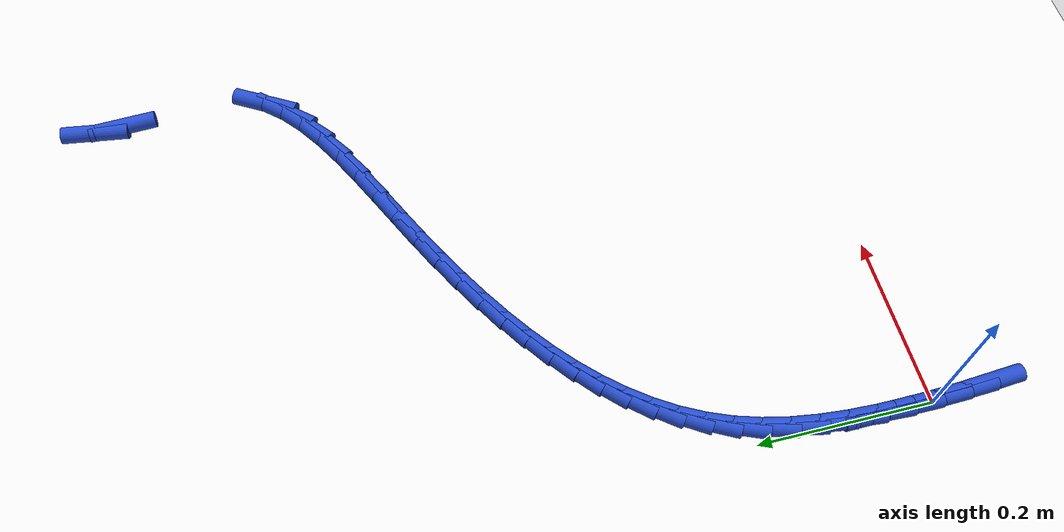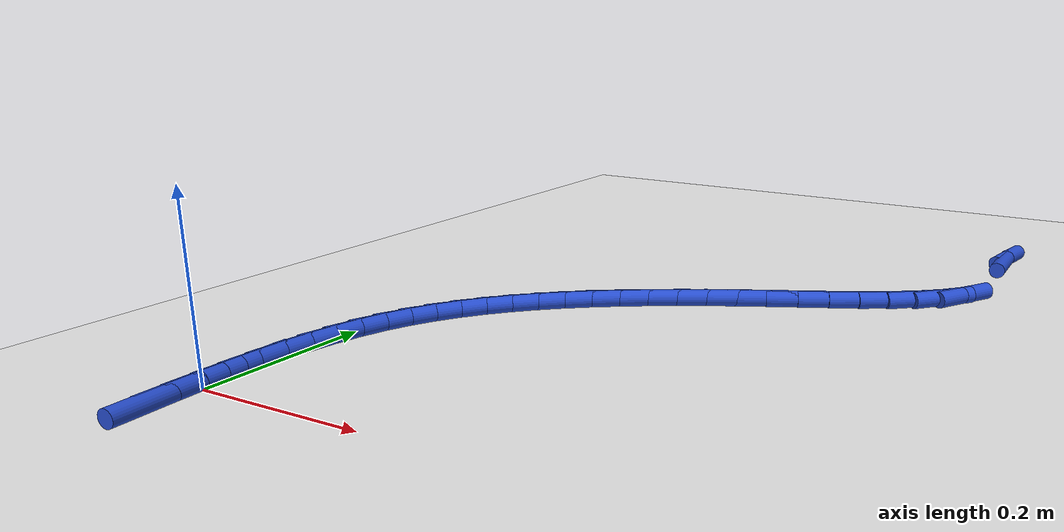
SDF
<sdf version="1.6">
 <world name="default">
  <model name="ground_plane">
   <static>1</static>
   <link name="link">
    <collision name="collision">
     <geometry><plane><normal>0 0 1</normal><size>100 100</size></plane></geometry>
     <surface><friction><ode><mu>100</mu><mu2>50</mu2></ode></friction></surface>
    </collision>
    <visual name="visual">
     <cast_shadows>0</cast_shadows>
     <geometry><plane><normal>0 0 1</normal><size>100 100</size></plane></geometry>
     <material>
      <script><uri>file://media/materials/scripts/gazebo.material</uri><name>Gazebo/WhiteGlow</name></script>
     </material>
    </visual>
   </link>
  </model>
  <model name="line">
   <link name="link_0">
    <pose>1.1058862159352145e-17 -4.163336342344337e-17 0.01 0 1.57 -1.5520934585583777</pose>
    <collision name="collision">
     <geometry><cylinder><radius>0.01</radius><length>0.08</length></cylinder></geometry>
    </collision>
    <visual name="visual">
     <material>
      <script><name>Gazebo/Blue</name><uri>file://media/materials/scripts/gazebo.material</uri></script>
     </material>
     <geometry><cylinder><radius>0.01</radius><length>0.08</length></cylinder></geometry>
    </visual>
   </link>
   <link name="link_1">
    <pose>-0.0006060910726536685 0.03240253813865341 0.01 0 1.57 1.5602132643527702</pose>
    <collision name="collision">
     <geometry><cylinder><radius>0.01</radius><length>0.08</length></cylinder></geometry>
    </collision>
    <visual name="visual">
     <material>
      <script><name>Gazebo/Blue</name><uri>file://media/materials/scripts/gazebo.material</uri></script>
     </material>
     <geometry><cylinder><radius>0.01</radius><length>0.08</length></cylinder></geometry>
    </visual>
   </link>
   <link name="link_2">
    <pose>-0.00026167454089582134 0.06494545047513745 0.01 0 1.57 1.5225124292682661</pose>
    <collision name="collision">
     <geometry><cylinder><radius>0.01</radius><length>0.08</length></cylinder></geometry>
    </collision>
    <visual name="visual">
     <material>
      <script><name>Gazebo/Blue</name><uri>file://media/materials/scripts/gazebo.material</uri></script>
     </material>
     <geometry><cylinder><radius>0.01</radius><length>0.08</length></cylinder></geometry>
    </visual>
   </link>
   <link name="link_3">
    <pose>0.001304259534824519 0.09735205104350853 0.01 0 1.57 1.4754899106537582</pose>
    <collision name="collision">
     <geometry><cylinder><radius>0.01</radius><length>0.08</length></cylinder></geometry>
    </collision>
    <visual name="visual">
     <material>
      <script><name>Gazebo/Blue</name><uri>file://media/materials/scripts/gazebo.material</uri></script>
     </material>
     <geometry><cylinder><radius>0.01</radius><length>0.08</length></cylinder></geometry>
    </visual>
   </link>
   <link name="link_4">
    <pose>0.004362721094058318 0.12934565387782318 0.01 0 1.57 1.4179594097095918</pose>
    <collision name="collision">
     <geometry><cylinder><radius>0.01</radius><length>0.08</length></cylinder></geometry>
    </collision>
    <visual name="visual">
     <material>
      <script><name>Gazebo/Blue</name><uri>file://media/materials/scripts/gazebo.material</uri></script>
     </material>
     <geometry><cylinder><radius>0.01</radius><length>0.08</length></cylinder></geometry>
    </visual>
   </link>
   <link name="link_5">
    <pose>0.009184720076356545 0.160649573012138 0.01 0 1.57 1.3485221151968647</pose>
    <collision name="collision">
     <geometry><cylinder><radius>0.01</radius><length>0.08</length></cylinder></geometry>
    </collision>
    <visual name="visual">
     <material>
      <script><name>Gazebo/Blue</name><uri>file://media/materials/scripts/gazebo.material</uri></script>
     </material>
     <geometry><cylinder><radius>0.01</radius><length>0.08</length></cylinder></geometry>
    </visual>
   </link>
   <link name="link_6">
    <pose>0.016041266421270163 0.1909871224805094 0.01 0 1.57 1.2657338690753326</pose>
    <collision name="collision">
     <geometry><cylinder><radius>0.01</radius><length>0.08</length></cylinder></geometry>
    </collision>
    <visual name="visual">
     <material>
      <script><name>Gazebo/Blue</name><uri>file://media/materials/scripts/gazebo.material</uri></script>
     </material>
     <geometry><cylinder><radius>0.01</radius><length>0.08</length></cylinder></geometry>
    </visual>
   </link>
   <link name="link_7">
    <pose>0.025202995325985585 0.220081962973515 0.01 0 1.57 1.1728728424087764</pose>
    <collision name="collision">
     <geometry><cylinder><radius>0.01</radius><length>0.08</length></cylinder></geometry>
    </collision>
    <visual name="visual">
     <material>
      <script><name>Gazebo/Blue</name><uri>file://media/materials/scripts/gazebo.material</uri></script>
     </material>
     <geometry><cylinder><radius>0.01</radius><length>0.08</length></cylinder></geometry>
    </visual>
   </link>
   <link name="link_8">
    <pose>0.03683532720095613 0.24775508442811234 0.01 0 1.57 1.0810931739518155</pose>
    <collision name="collision">
     <geometry><cylinder><radius>0.01</radius><length>0.08</length></cylinder></geometry>
    </collision>
    <visual name="visual">
     <material>
      <script><name>Gazebo/Blue</name><uri>file://media/materials/scripts/gazebo.material</uri></script>
     </material>
     <geometry><cylinder><radius>0.01</radius><length>0.08</length></cylinder></geometry>
    </visual>
   </link>
   <link name="link_9">
    <pose>0.050854804195360606 0.27405770234519733 0.01 0 1.57 0.9936799867041609</pose>
    <collision name="collision">
     <geometry><cylinder><radius>0.01</radius><length>0.08</length></cylinder></geometry>
    </collision>
    <visual name="visual">
     <material>
      <script><name>Gazebo/Blue</name><uri>file://media/materials/scripts/gazebo.material</uri></script>
     </material>
     <geometry><cylinder><radius>0.01</radius><length>0.08</length></cylinder></geometry>
    </visual>
   </link>
   <link name="link_10">
    <pose>0.06714198887313642 0.2990743152462877 0.01 0 1.57 0.9120440300255599</pose>
    <collision name="collision">
     <geometry><cylinder><radius>0.01</radius><length>0.08</length></cylinder></geometry>
    </collision>
    <visual name="visual">
     <material>
      <script><name>Gazebo/Blue</name><uri>file://media/materials/scripts/gazebo.material</uri></script>
     </material>
     <geometry><cylinder><radius>0.01</radius><length>0.08</length></cylinder></geometry>
    </visual>
   </link>
   <link name="link_11">
    <pose>0.08557744379822098 0.3228894216529014 0.01 0 1.57 0.8371056735407433</pose>
    <collision name="collision">
     <geometry><cylinder><radius>0.01</radius><length>0.08</length></cylinder></geometry>
    </collision>
    <visual name="visual">
     <material>
      <script><name>Gazebo/Blue</name><uri>file://media/materials/scripts/gazebo.material</uri></script>
     </material>
     <geometry><cylinder><radius>0.01</radius><length>0.08</length></cylinder></geometry>
    </visual>
   </link>
   <link name="link_12">
    <pose>0.10604173153455172 0.34558752008655674 0.01 0 1.57 0.769320851371035</pose>
    <collision name="collision">
     <geometry><cylinder><radius>0.01</radius><length>0.08</length></cylinder></geometry>
    </collision>
    <visual name="visual">
     <material>
      <script><name>Gazebo/Blue</name><uri>file://media/materials/scripts/gazebo.material</uri></script>
     </material>
     <geometry><cylinder><radius>0.01</radius><length>0.08</length></cylinder></geometry>
    </visual>
   </link>
   <link name="link_13">
    <pose>0.1284154146460661 0.36725310906877157 0.01 0 1.57 0.7087666705866533</pose>
    <collision name="collision">
     <geometry><cylinder><radius>0.01</radius><length>0.08</length></cylinder></geometry>
    </collision>
    <visual name="visual">
     <material>
      <script><name>Gazebo/Blue</name><uri>file://media/materials/scripts/gazebo.material</uri></script>
     </material>
     <geometry><cylinder><radius>0.01</radius><length>0.08</length></cylinder></geometry>
    </visual>
   </link>
   <link name="link_14">
    <pose>0.15257905569670144 0.3879706871210638 0.01 0 1.57 0.6552488280356645</pose>
    <collision name="collision">
     <geometry><cylinder><radius>0.01</radius><length>0.08</length></cylinder></geometry>
    </collision>
    <visual name="visual">
     <material>
      <script><name>Gazebo/Blue</name><uri>file://media/materials/scripts/gazebo.material</uri></script>
     </material>
     <geometry><cylinder><radius>0.01</radius><length>0.08</length></cylinder></geometry>
    </visual>
   </link>
   <link name="link_15">
    <pose>0.17841321725039522 0.40782475276495145 0.01 0 1.57 0.6084033217376213</pose>
    <collision name="collision">
     <geometry><cylinder><radius>0.01</radius><length>0.08</length></cylinder></geometry>
    </collision>
    <visual name="visual">
     <material>
      <script><name>Gazebo/Blue</name><uri>file://media/materials/scripts/gazebo.material</uri></script>
     </material>
     <geometry><cylinder><radius>0.01</radius><length>0.08</length></cylinder></geometry>
    </visual>
   </link>
   <link name="link_16">
    <pose>0.2057984618710848 0.4268998045219526 0.01 0 1.57 0.5677786259152287</pose>
    <collision name="collision">
     <geometry><cylinder><radius>0.01</radius><length>0.08</length></cylinder></geometry>
    </collision>
    <visual name="visual">
     <material>
      <script><name>Gazebo/Blue</name><uri>file://media/materials/scripts/gazebo.material</uri></script>
     </material>
     <geometry><cylinder><radius>0.01</radius><length>0.08</length></cylinder></geometry>
    </visual>
   </link>
   <link name="link_17">
    <pose>0.23461535212270768 0.44528034091358515 0.01 0 1.57 0.532895030632407</pose>
    <collision name="collision">
     <geometry><cylinder><radius>0.01</radius><length>0.08</length></cylinder></geometry>
    </collision>
    <visual name="visual">
     <material>
      <script><name>Gazebo/Blue</name><uri>file://media/materials/scripts/gazebo.material</uri></script>
     </material>
     <geometry><cylinder><radius>0.01</radius><length>0.08</length></cylinder></geometry>
    </visual>
   </link>
   <link name="link_18">
    <pose>0.26474445056920126 0.46305086046136723 0.01 0 1.57 0.5032836581255119</pose>
    <collision name="collision">
     <geometry><cylinder><radius>0.01</radius><length>0.08</length></cylinder></geometry>
    </collision>
    <visual name="visual">
     <material>
      <script><name>Gazebo/Blue</name><uri>file://media/materials/scripts/gazebo.material</uri></script>
     </material>
     <geometry><cylinder><radius>0.01</radius><length>0.08</length></cylinder></geometry>
    </visual>
   </link>
   <link name="link_19">
    <pose>0.2960663197745028 0.48029586168681676 0.01 0 1.57 0.4785097959581657</pose>
    <collision name="collision">
     <geometry><cylinder><radius>0.01</radius><length>0.08</length></cylinder></geometry>
    </collision>
    <visual name="visual">
     <material>
      <script><name>Gazebo/Blue</name><uri>file://media/materials/scripts/gazebo.material</uri></script>
     </material>
     <geometry><cylinder><radius>0.01</radius><length>0.08</length></cylinder></geometry>
    </visual>
   </link>
   <link name="link_20">
    <pose>0.32846152230255 0.4970998431114516 0.01 0 1.57 0.45835798372783104</pose>
    <collision name="collision">
     <geometry><cylinder><radius>0.01</radius><length>0.08</length></cylinder></geometry>
    </collision>
    <visual name="visual">
     <material>
      <script><name>Gazebo/Blue</name><uri>file://media/materials/scripts/gazebo.material</uri></script>
     </material>
     <geometry><cylinder><radius>0.01</radius><length>0.08</length></cylinder></geometry>
    </visual>
   </link>
   <link name="link_21">
    <pose>0.36180171199137373 0.5135500710245826 0.01 0 1.57 0.44833628615228893</pose>
    <collision name="collision">
     <geometry><cylinder><radius>0.01</radius><length>0.08</length></cylinder></geometry>
    </collision>
    <visual name="visual">
     <material>
      <script><name>Gazebo/Blue</name><uri>file://media/materials/scripts/gazebo.material</uri></script>
     </material>
     <geometry><cylinder><radius>0.01</radius><length>0.08</length></cylinder></geometry>
    </visual>
   </link>
   <link name="link_22">
    <pose>0.395647992219943 0.5298302937004354 0.01 0 1.57 0.45522385149832384</pose>
    <collision name="collision">
     <geometry><cylinder><radius>0.01</radius><length>0.08</length></cylinder></geometry>
    </collision>
    <visual name="visual">
     <material>
      <script><name>Gazebo/Blue</name><uri>file://media/materials/scripts/gazebo.material</uri></script>
     </material>
     <geometry><cylinder><radius>0.01</radius><length>0.08</length></cylinder></geometry>
    </visual>
   </link>
   <link name="link_23">
    <pose>0.4291776071566356 0.5462435170008046 0.01 0 1.57 0.4801533569906769</pose>
    <collision name="collision">
     <geometry><cylinder><radius>0.01</radius><length>0.08</length></cylinder></geometry>
    </collision>
    <visual name="visual">
     <material>
      <script><name>Gazebo/Blue</name><uri>file://media/materials/scripts/gazebo.material</uri></script>
     </material>
     <geometry><cylinder><radius>0.01</radius><length>0.08</length></cylinder></geometry>
    </visual>
   </link>
   <link name="link_24">
    <pose>0.46154402375373493 0.563100133905867 0.01 0 1.57 0.525670705203946</pose>
    <collision name="collision">
     <geometry><cylinder><radius>0.01</radius><length>0.08</length></cylinder></geometry>
    </collision>
    <visual name="visual">
     <material>
      <script><name>Gazebo/Blue</name><uri>file://media/materials/scripts/gazebo.material</uri></script>
     </material>
     <geometry><cylinder><radius>0.01</radius><length>0.08</length></cylinder></geometry>
    </visual>
   </link>
   <link name="link_25">
    <pose>0.4919007089635234 0.5807105373957983 0.01 0 1.57 0.596537264560504</pose>
    <collision name="collision">
     <geometry><cylinder><radius>0.01</radius><length>0.08</length></cylinder></geometry>
    </collision>
    <visual name="visual">
     <material>
      <script><name>Gazebo/Blue</name><uri>file://media/materials/scripts/gazebo.material</uri></script>
     </material>
     <geometry><cylinder><radius>0.01</radius><length>0.08</length></cylinder></geometry>
    </visual>
   </link>
   <link name="link_26">
    <pose>0.5194011297382842 0.599385120450775 0.01 0 1.57 0.7001153752594739</pose>
    <collision name="collision">
     <geometry><cylinder><radius>0.01</radius><length>0.08</length></cylinder></geometry>
    </collision>
    <visual name="visual">
     <material>
      <script><name>Gazebo/Blue</name><uri>file://media/materials/scripts/gazebo.material</uri></script>
     </material>
     <geometry><cylinder><radius>0.01</radius><length>0.08</length></cylinder></geometry>
    </visual>
   </link>
   <link name="link_27">
    <pose>0.5431987530303005 0.6194342760509737 0.01 0 1.57 0.8459799169875396</pose>
    <collision name="collision">
     <geometry><cylinder><radius>0.01</radius><length>0.08</length></cylinder></geometry>
    </collision>
    <visual name="visual">
     <material>
      <script><name>Gazebo/Blue</name><uri>file://media/materials/scripts/gazebo.material</uri></script>
     </material>
     <geometry><cylinder><radius>0.01</radius><length>0.08</length></cylinder></geometry>
    </visual>
   </link>
   <link name="link_28">
    <pose>0.5624470457918553 0.6411683971765703 0.01 0 1.57 1.0424001961573721</pose>
    <collision name="collision">
     <geometry><cylinder><radius>0.01</radius><length>0.08</length></cylinder></geometry>
    </collision>
    <visual name="visual">
     <material>
      <script><name>Gazebo/Blue</name><uri>file://media/materials/scripts/gazebo.material</uri></script>
     </material>
     <geometry><cylinder><radius>0.01</radius><length>0.08</length></cylinder></geometry>
    </visual>
   </link>
   <link name="link_34">
    <pose>0.5707487654097537 0.8149917593471208 0.01 0 1.57 -1.5294618457765954</pose>
    <collision name="collision">
     <geometry><cylinder><radius>0.01</radius><length>0.08</length></cylinder></geometry>
    </collision>
    <visual name="visual">
     <material>
      <script><name>Gazebo/Blue</name><uri>file://media/materials/scripts/gazebo.material</uri></script>
     </material>
     <geometry><cylinder><radius>0.01</radius><length>0.08</length></cylinder></geometry>
    </visual>
   </link>
   <link name="link_35">
    <pose>0.5693803435839668 0.8480789632782162 0.01 0 1.57 1.4241169343037612</pose>
    <collision name="collision">
     <geometry><cylinder><radius>0.01</radius><length>0.08</length></cylinder></geometry>
    </collision>
    <visual name="visual">
     <material>
      <script><name>Gazebo/Blue</name><uri>file://media/materials/scripts/gazebo.material</uri></script>
     </material>
     <geometry><cylinder><radius>0.01</radius><length>0.08</length></cylinder></geometry>
    </visual>
   </link>
   <link name="link_288">
    <pose>0.003361532936152302 -0.06376637560743297 0.01 0 1.57 -1.5069416860399758</pose>
    <collision name="collision">
     <geometry><cylinder><radius>0.01</radius><length>0.08</length></cylinder></geometry>
    </collision>
    <visual name="visual">
     <material>
      <script><name>Gazebo/Blue</name><uri>file://media/materials/scripts/gazebo.material</uri></script>
     </material>
     <geometry><cylinder><radius>0.01</radius><length>0.08</length></cylinder></geometry>
    </visual>
   </link>
   <link name="link_289">
    <pose>0.0013333222044910216 -0.03204662369830334 0.01 0 1.57 -1.5292146090773582</pose>
    <collision name="collision">
     <geometry><cylinder><radius>0.01</radius><length>0.08</length></cylinder></geometry>
    </collision>
    <visual name="visual">
     <material>
      <script><name>Gazebo/Blue</name><uri>file://media/materials/scripts/gazebo.material</uri></script>
     </material>
     <geometry><cylinder><radius>0.01</radius><length>0.08</length></cylinder></geometry>
    </visual>
   </link>
   <link name="link_290">
    <pose>3.0357660829594124e-18 1.5265566588595902e-16 0.01 0 1.57 -1.5506588660877467</pose>
    <collision name="collision">
     <geometry><cylinder><radius>0.01</radius><length>0.08</length></cylinder></geometry>
    </collision>
    <visual name="visual">
     <material>
      <script><name>Gazebo/Blue</name><uri>file://media/materials/scripts/gazebo.material</uri></script>
     </material>
     <geometry><cylinder><radius>0.01</radius><length>0.08</length></cylinder></geometry>
    </visual>
   </link>
   <link name="link_291">
    <pose>-0.0006538245396304411 0.032463683862076625 0.01 0 1.57 1.5704844683839125</pose>
    <collision name="collision">
     <geometry><cylinder><radius>0.01</radius><length>0.08</length></cylinder></geometry>
    </collision>
    <visual name="visual">
     <material>
      <script><name>Gazebo/Blue</name><uri>file://media/materials/scripts/gazebo.material</uri></script>
     </material>
     <geometry><cylinder><radius>0.01</radius><length>0.08</length></cylinder></geometry>
    </visual>
   </link>
   <link name="link_292">
    <pose>-0.0006435422767100349 0.06543461626252939 0.01 0 1.57 -1.5609617535096798</pose>
    <collision name="collision">
     <geometry><cylinder><radius>0.01</radius><length>0.08</length></cylinder></geometry>
    </collision>
    <visual name="visual">
     <material>
      <script><name>Gazebo/Blue</name><uri>file://media/materials/scripts/gazebo.material</uri></script>
     </material>
     <geometry><cylinder><radius>0.01</radius><length>0.08</length></cylinder></geometry>
    </visual>
   </link>
  </model>
 </world>
</sdf>
